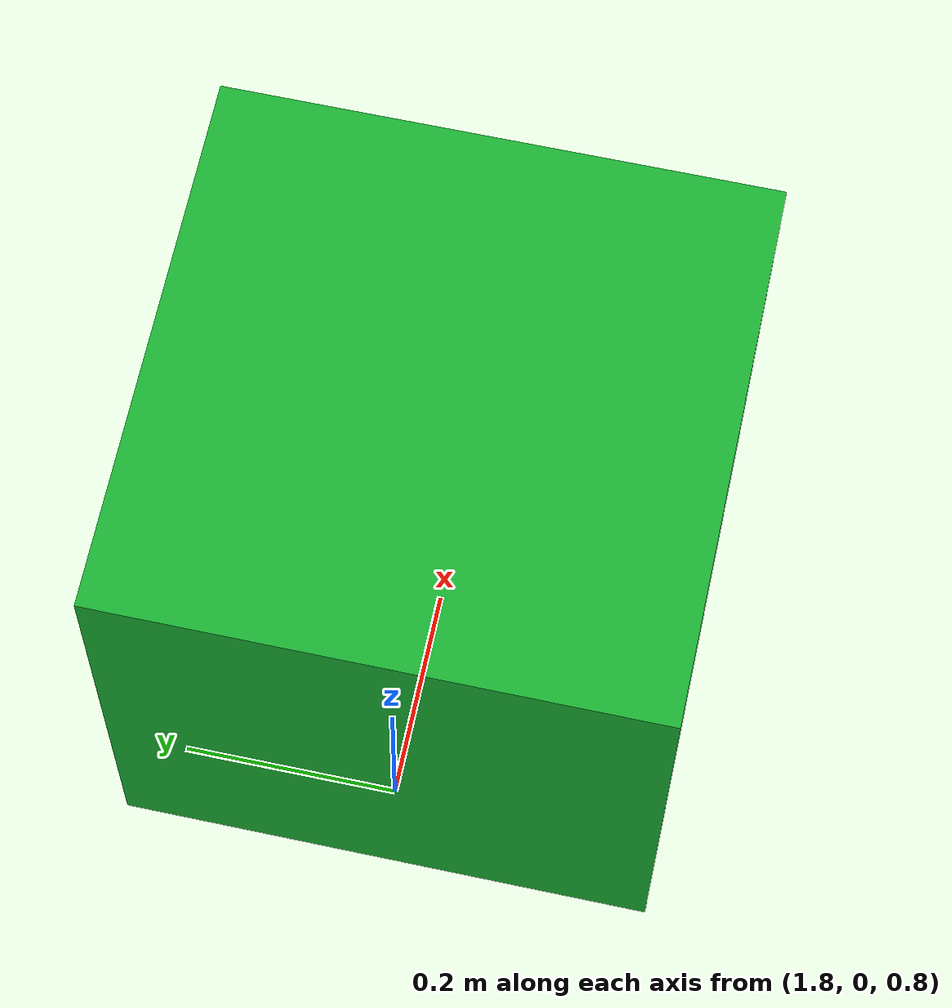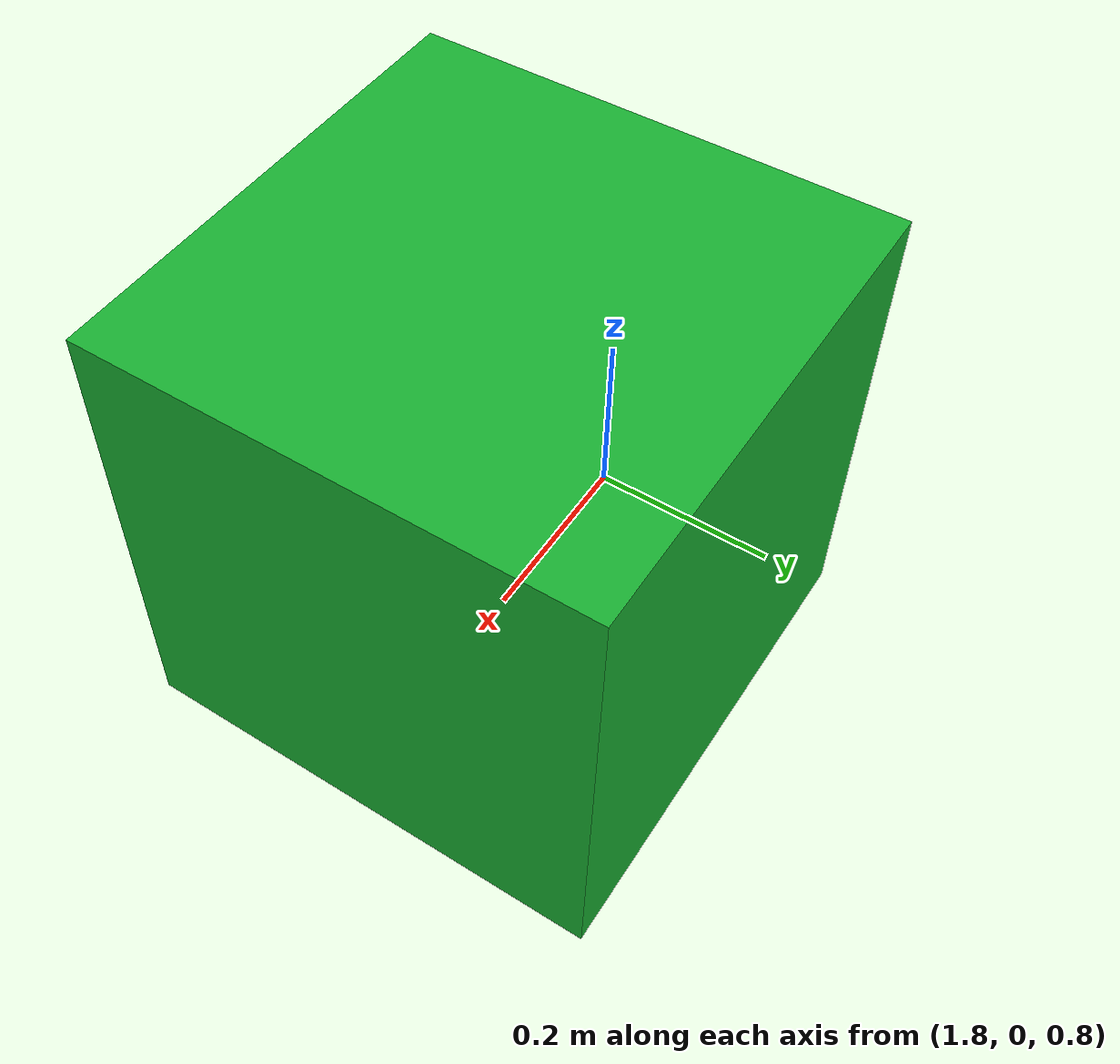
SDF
<?xml version="1.0"?>
<sdf version="1.10">
  <world name="camera">
    <physics name="1ms" type="ignored">
      <max_step_size>0.001</max_step_size>
      <real_time_factor>1.0</real_time_factor>
    </physics>
    <plugin filename="gz-sim-physics-system" name="gz::sim::systems::Physics"/>
    <plugin filename="gz-sim-user-commands-system" name="gz::sim::systems::UserCommands"/>
    <plugin filename="gz-sim-scene-broadcaster-system" name="gz::sim::systems::SceneBroadcaster"/>
    <plugin filename="gz-sim-sensors-system" name="gz::sim::systems::Sensors">
      <render_engine>ogre2</render_engine>
    </plugin>

    <light name="sun" type="directional">
      <pose>0 0 10 0 0 0</pose>
      <diffuse>0.8 0.8 0.8 1</diffuse>
      <specular>0.2 0.2 0.2 1</specular>
      <direction>-0.5 0.1 -0.9</direction>
    </light>

    <model name="camera_probe">
      <static>true</static>
      <pose>0 0 1 0 1.57079632679 0</pose>
      <link name="camera_link">
        <sensor name="camera" type="camera">
          <always_on>true</always_on>
          <update_rate>15</update_rate>
          <topic>/camera/image</topic>
          <camera>
            <horizontal_fov>1.047</horizontal_fov>
            <image>
              <width>320</width>
              <height>240</height>
              <format>R8G8B8</format>
            </image>
            <clip>
              <near>0.1</near>
              <far>20</far>
            </clip>
            <camera_info_topic>/camera/camera_info</camera_info_topic>
          </camera>
        </sensor>
      </link>
    </model>

    <model name="target">
      <static>true</static>
      <pose>2 0 1 0 0 0</pose>
      <link name="target_link">
        <visual name="target_visual">
          <geometry><box><size>0.5 0.5 0.5</size></box></geometry>
          <material><diffuse>0.1 0.7 0.2 1</diffuse></material>
        </visual>
      </link>
    </model>
  </world>
</sdf>
